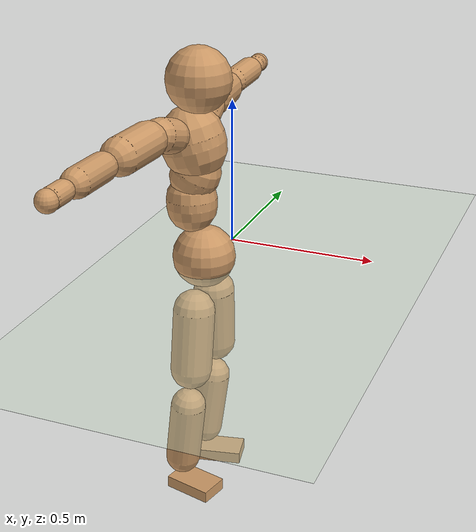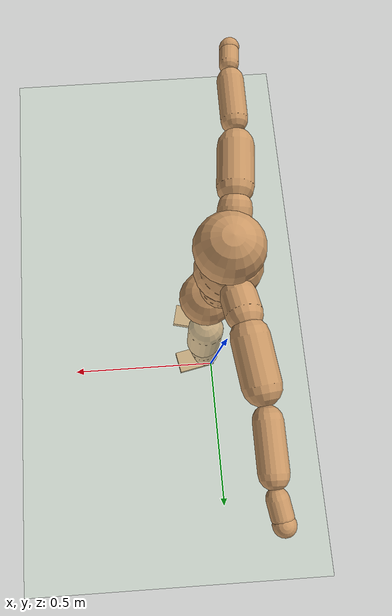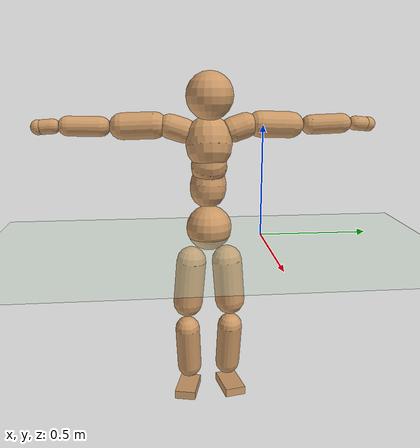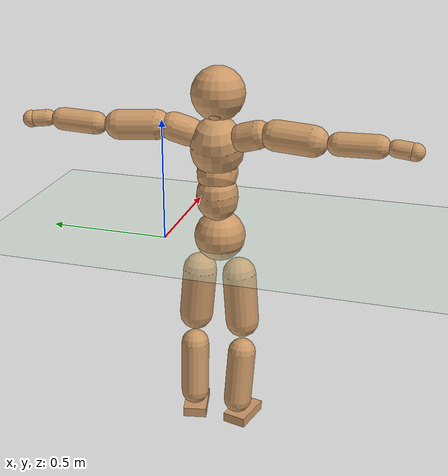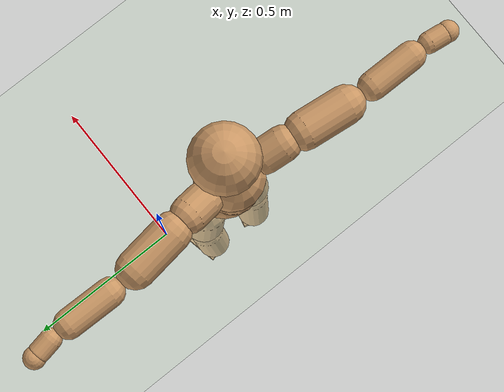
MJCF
<mujoco model="humanoid">
  <compiler coordinate="local"/>
  <default>
    <joint damping="0.0" armature="0.01" stiffness="0.0" limited="true"/>
    <geom conaffinity="1" condim="3" contype="7" margin="0.001" rgba="0.8 0.6 .4 1"/>
  </default>
  <asset>
    <texture type="skybox" builtin="gradient" rgb1=".4 .5 .6" rgb2="0 0 0" width="100" height="100"/>
    <texture builtin="flat" height="1278" mark="cross" markrgb="1 1 1" name="texgeom" random="0.01" rgb1="0.8 0.6 0.4" rgb2="0.8 0.6 0.4" type="cube" width="127"/>
    <texture builtin="checker" height="100" name="texplane" rgb1="0 0 0" rgb2="0.8 0.8 0.8" type="2d" width="100"/>
    <material name="MatPlane" reflectance="0.5" shininess="1" specular="1" texrepeat="60 60" texture="texplane"/>
    <material name="geom" texture="texgeom" texuniform="true"/>
  </asset>
  <worldbody>
    <light cutoff="100" diffuse="1 1 1" dir="-0 0 -1.3" directional="true" exponent="1" pos="0 0 1.3" specular=".1 .1 .1"/>
    <geom conaffinity="1" condim="3" name="floor" pos="0 0 0" rgba="0.8 0.9 0.8 1" size="100 100 .2" type="plane" material="MatPlane"/>
    <body name="Pelvis" pos="-0.0024 -0.2402 0.0406">
      <freejoint name="Pelvis"/>
      <geom type="sphere" contype="1" conaffinity="1" density="500" size="0.1040" pos="0.0000 0.0000 0.0000" name="Pelvis"/>
      <body name="L_Hip" pos="-0.0014 0.0788 -0.0925">
        <joint name="L_Hip_x" type="hinge" pos="0 0 0" axis="1 0 0" stiffness="800" damping="80" armature="0.02" range="-180.0000 180.0000"/>
        <joint name="L_Hip_y" type="hinge" pos="0 0 0" axis="0 1 0" stiffness="800" damping="80" armature="0.02" range="-180.0000 180.0000"/>
        <joint name="L_Hip_z" type="hinge" pos="0 0 0" axis="0 0 1" stiffness="800" damping="80" armature="0.02" range="-180.0000 180.0000"/>
        <geom type="capsule" contype="1" conaffinity="1" density="500" fromto="-0.0015 0.0054 -0.0687 -0.0061 0.0217 -0.2747" size="0.07" name="L_Hip"/>
        <body name="L_Knee" pos="-0.0077 0.0271 -0.3434">
          <joint name="L_Knee_x" type="hinge" pos="0 0 0" axis="1 0 0" stiffness="800" damping="80" armature="0.02" range="-180.0000 180.0000"/>
          <joint name="L_Knee_y" type="hinge" pos="0 0 0" axis="0 1 0" stiffness="800" damping="80" armature="0.02" range="-180.0000 180.0000"/>
          <joint name="L_Knee_z" type="hinge" pos="0 0 0" axis="0 0 1" stiffness="800" damping="80" armature="0.02" range="-180.0000 180.0000"/>
          <geom type="capsule" contype="1" conaffinity="1" density="500" fromto="-0.0097 -0.0025 -0.0729 -0.0387 -0.0102 -0.2915" size="0.0594" name="L_Knee"/>
          <body name="L_Ankle" pos="-0.0484 -0.0127 -0.3643">
            <joint name="L_Ankle_x" type="hinge" pos="0 0 0" axis="1 0 0" stiffness="800" damping="80" armature="0.02" range="-180.0000 180.0000"/>
            <joint name="L_Ankle_y" type="hinge" pos="0 0 0" axis="0 1 0" stiffness="800" damping="80" armature="0.02" range="-180.0000 180.0000"/>
            <joint name="L_Ankle_z" type="hinge" pos="0 0 0" axis="0 0 1" stiffness="800" damping="80" armature="0.02" range="-180.0000 180.0000"/>
            <geom type="box" contype="1" conaffinity="1" density="500" pos="0.0583 0.0120 -0.0261" size="0.085 0.0498 0.0204" quat="0.9949 0.0000 0.0000 0.1012" name="L_Ankle"/>
            <body name="L_Toe" pos="0.1166 0.024 -0.0523">
              <joint name="L_Toe_x" type="hinge" pos="0 0 0" axis="1 0 0" stiffness="500" damping="50" armature="0.02" range="-180.0000 180.0000"/>
              <joint name="L_Toe_y" type="hinge" pos="0 0 0" axis="0 1 0" stiffness="500" damping="50" armature="0.02" range="-180.0000 180.0000"/>
              <joint name="L_Toe_z" type="hinge" pos="0 0 0" axis="0 0 1" stiffness="500" damping="50" armature="0.02" range="-180.0000 180.0000"/>
              <geom type="box" contype="1" conaffinity="1" density="500" pos="0.0000 0.0000 0.0264" size="0.001 0.0025 0.001" quat="0.9942 0.0000 0.0000 0.1076" name="L_Toe"/>
            </body>
          </body>
        </body>
      </body>
      <body name="R_Hip" pos="0.0007 -0.0775 -0.0913">
        <joint name="R_Hip_x" type="hinge" pos="0 0 0" axis="1 0 0" stiffness="800" damping="80" armature="0.02" range="-180.0000 180.0000"/>
        <joint name="R_Hip_y" type="hinge" pos="0 0 0" axis="0 1 0" stiffness="800" damping="80" armature="0.02" range="-180.0000 180.0000"/>
        <joint name="R_Hip_z" type="hinge" pos="0 0 0" axis="0 0 1" stiffness="800" damping="80" armature="0.02" range="-180.0000 180.0000"/>
        <geom type="capsule" contype="1" conaffinity="1" density="500" fromto="-0.0022 -0.0061 -0.0706 -0.0090 -0.0245 -0.2825" size="0.0692" name="R_Hip"/>
        <body name="R_Knee" pos="-0.0112 -0.0307 -0.3531">
          <joint name="R_Knee_x" type="hinge" pos="0 0 0" axis="1 0 0" stiffness="800" damping="80" armature="0.02" range="-180.0000 180.0000"/>
          <joint name="R_Knee_y" type="hinge" pos="0 0 0" axis="0 1 0" stiffness="800" damping="80" armature="0.02" range="-180.0000 180.0000"/>
          <joint name="R_Knee_z" type="hinge" pos="0 0 0" axis="0 0 1" stiffness="800" damping="80" armature="0.02" range="-180.0000 180.0000"/>
          <geom type="capsule" contype="1" conaffinity="1" density="500" fromto="-0.0096 0.0028 -0.0731 -0.0384 0.0113 -0.2923" size="0.059" name="R_Knee"/>
          <body name="R_Ankle" pos="-0.048 0.0141 -0.3654">
            <joint name="R_Ankle_x" type="hinge" pos="0 0 0" axis="1 0 0" stiffness="800" damping="80" armature="0.02" range="-180.0000 180.0000"/>
            <joint name="R_Ankle_y" type="hinge" pos="0 0 0" axis="0 1 0" stiffness="800" damping="80" armature="0.02" range="-180.0000 180.0000"/>
            <joint name="R_Ankle_z" type="hinge" pos="0 0 0" axis="0 0 1" stiffness="800" damping="80" armature="0.02" range="-180.0000 180.0000"/>
            <geom type="box" contype="1" conaffinity="1" density="500" pos="0.0599 -0.0145 -0.0226" size="0.0831 0.0499 0.0204" quat="0.9930 0.0000 0.0000 -0.1183" name="R_Ankle"/>
            <body name="R_Toe" pos="0.1198 -0.029 -0.0451">
              <joint name="R_Toe_x" type="hinge" pos="0 0 0" axis="1 0 0" stiffness="500" damping="50" armature="0.02" range="-180.0000 180.0000"/>
              <joint name="R_Toe_y" type="hinge" pos="0 0 0" axis="0 1 0" stiffness="500" damping="50" armature="0.02" range="-180.0000 180.0000"/>
              <joint name="R_Toe_z" type="hinge" pos="0 0 0" axis="0 0 1" stiffness="500" damping="50" armature="0.02" range="-180.0000 180.0000"/>
              <geom type="box" contype="1" conaffinity="1" density="500" pos="0.0000 0.0000 0.0230" size="0.001 0.0025 0.001" quat="0.9941 0.0000 0.0000 -0.1087" name="R_Toe"/>
            </body>
          </body>
        </body>
      </body>
      <body name="Torso" pos="-0.0375 -0.0024 0.1126">
        <joint name="Torso_x" type="hinge" pos="0 0 0" axis="1 0 0" stiffness="1000" damping="100" armature="0.02" range="-180.0000 180.0000"/>
        <joint name="Torso_y" type="hinge" pos="0 0 0" axis="0 1 0" stiffness="1000" damping="100" armature="0.02" range="-180.0000 180.0000"/>
        <joint name="Torso_z" type="hinge" pos="0 0 0" axis="0 0 1" stiffness="1000" damping="100" armature="0.02" range="-180.0000 180.0000"/>
        <geom type="capsule" contype="1" conaffinity="1" density="500" fromto="-0.0033 0.0031 0.0833 -0.0022 0.0020 0.0555" size="0.083" name="Torso"/>
        <body name="Spine" pos="-0.0055 0.0051 0.1389">
          <joint name="Spine_x" type="hinge" pos="0 0 0" axis="1 0 0" stiffness="1000" damping="100" armature="0.02" range="-180.0000 180.0000"/>
          <joint name="Spine_y" type="hinge" pos="0 0 0" axis="0 1 0" stiffness="1000" damping="100" armature="0.02" range="-180.0000 180.0000"/>
          <joint name="Spine_z" type="hinge" pos="0 0 0" axis="0 0 1" stiffness="1000" damping="100" armature="0.02" range="-180.0000 180.0000"/>
          <geom type="capsule" contype="1" conaffinity="1" density="500" fromto="0.0183 0.0011 0.0329 0.0122 0.0007 0.0219" size="0.0813" name="Spine"/>
          <body name="Chest" pos="0.0305 0.0018 0.0549">
            <joint name="Chest_x" type="hinge" pos="0 0 0" axis="1 0 0" stiffness="1000" damping="100" armature="0.02" range="-180.0000 180.0000"/>
            <joint name="Chest_y" type="hinge" pos="0 0 0" axis="0 1 0" stiffness="1000" damping="100" armature="0.02" range="-180.0000 180.0000"/>
            <joint name="Chest_z" type="hinge" pos="0 0 0" axis="0 0 1" stiffness="1000" damping="100" armature="0.02" range="-180.0000 180.0000"/>
            <geom type="capsule" contype="1" conaffinity="1" density="500" fromto="-0.0243 -0.0010 0.0927 -0.0162 -0.0007 0.0618" size="0.1048" name="Chest"/>
            <body name="Neck" pos="-0.0497 -0.0026 0.2177">
              <joint name="Neck_x" type="hinge" pos="0 0 0" axis="1 0 0" stiffness="500" damping="50" armature="0.02" range="-180.0000 180.0000"/>
              <joint name="Neck_y" type="hinge" pos="0 0 0" axis="0 1 0" stiffness="500" damping="50" armature="0.02" range="-180.0000 180.0000"/>
              <joint name="Neck_z" type="hinge" pos="0 0 0" axis="0 0 1" stiffness="500" damping="50" armature="0.02" range="-180.0000 180.0000"/>
              <geom type="capsule" contype="1" conaffinity="1" density="500" fromto="0.0100 0.0009 0.0123 0.0398 0.0035 0.0491" size="0.0454" name="Neck"/>
              <body name="Head" pos="0.0498 0.0044 0.0614">
                <joint name="Head_x" type="hinge" pos="0 0 0" axis="1 0 0" stiffness="500" damping="50" armature="0.02" range="-180.0000 180.0000"/>
                <joint name="Head_y" type="hinge" pos="0 0 0" axis="0 1 0" stiffness="500" damping="50" armature="0.02" range="-180.0000 180.0000"/>
                <joint name="Head_z" type="hinge" pos="0 0 0" axis="0 0 1" stiffness="500" damping="50" armature="0.02" range="-180.0000 180.0000"/>
                <geom type="sphere" contype="1" conaffinity="1" density="500" size="0.1054" pos="0.0000 0.0000 0.0000" name="Head"/>
              </body>
            </body>
            <body name="L_Thorax" pos="-0.0324 0.0859 0.1246">
              <joint name="L_Thorax_x" type="hinge" pos="0 0 0" axis="1 0 0" stiffness="500" damping="50" armature="0.02" range="-180.0000 180.0000"/>
              <joint name="L_Thorax_y" type="hinge" pos="0 0 0" axis="0 1 0" stiffness="500" damping="50" armature="0.02" range="-180.0000 180.0000"/>
              <joint name="L_Thorax_z" type="hinge" pos="0 0 0" axis="0 0 1" stiffness="500" damping="50" armature="0.02" range="-180.0000 180.0000"/>
              <geom type="capsule" contype="1" conaffinity="1" density="500" fromto="-0.0026 0.0200 0.0062 -0.0103 0.0798 0.0248" size="0.0568" name="L_Thorax"/>
              <body name="L_Shoulder" pos="-0.0129 0.0998 0.031">
                <joint name="L_Shoulder_x" type="hinge" pos="0 0 0" axis="1 0 0" stiffness="500" damping="50" armature="0.02" range="-720.0000 720.0000"/>
                <joint name="L_Shoulder_y" type="hinge" pos="0 0 0" axis="0 1 0" stiffness="500" damping="50" armature="0.02" range="-720.0000 720.0000"/>
                <joint name="L_Shoulder_z" type="hinge" pos="0 0 0" axis="0 0 1" stiffness="500" damping="50" armature="0.02" range="-720.0000 720.0000"/>
                <geom type="capsule" contype="1" conaffinity="1" density="500" fromto="-0.0063 0.0482 -0.0021 -0.0252 0.1927 -0.0083" size="0.0593" name="L_Shoulder"/>
                <body name="L_Elbow" pos="-0.0315 0.2409 -0.0104">
                  <joint name="L_Elbow_x" type="hinge" pos="0 0 0" axis="1 0 0" stiffness="500" damping="50" armature="0.02" range="-720.0000 720.0000"/>
                  <joint name="L_Elbow_y" type="hinge" pos="0 0 0" axis="0 1 0" stiffness="500" damping="50" armature="0.02" range="-720.0000 720.0000"/>
                  <joint name="L_Elbow_z" type="hinge" pos="0 0 0" axis="0 0 1" stiffness="500" damping="50" armature="0.02" range="-720.0000 720.0000"/>
                  <geom type="capsule" contype="1" conaffinity="1" density="500" fromto="0.0005 0.0477 0.0018 0.0022 0.1907 0.0072" size="0.0448" name="L_Elbow"/>
                  <body name="L_Wrist" pos="0.0027 0.2383 0.009">
                    <joint name="L_Wrist_x" type="hinge" pos="0 0 0" axis="1 0 0" stiffness="300" damping="30" armature="0.02" range="-180.0000 180.0000"/>
                    <joint name="L_Wrist_y" type="hinge" pos="0 0 0" axis="0 1 0" stiffness="300" damping="30" armature="0.02" range="-180.0000 180.0000"/>
                    <joint name="L_Wrist_z" type="hinge" pos="0 0 0" axis="0 0 1" stiffness="300" damping="30" armature="0.02" range="-180.0000 180.0000"/>
                    <geom type="capsule" contype="1" conaffinity="1" density="500" fromto="-0.0029 0.0168 -0.0016 -0.0117 0.0673 -0.0065" size="0.0325" name="L_Wrist"/>
                    <body name="L_Hand" pos="-0.0146 0.0842 -0.0081">
                      <joint name="L_Hand_x" type="hinge" pos="0 0 0" axis="1 0 0" stiffness="300" damping="30" armature="0.02" range="-180.0000 180.0000"/>
                      <joint name="L_Hand_y" type="hinge" pos="0 0 0" axis="0 1 0" stiffness="300" damping="30" armature="0.02" range="-180.0000 180.0000"/>
                      <joint name="L_Hand_z" type="hinge" pos="0 0 0" axis="0 0 1" stiffness="300" damping="30" armature="0.02" range="-180.0000 180.0000"/>
                      <geom type="sphere" contype="1" conaffinity="1" density="500" size="0.0339" pos="0.0000 0.0000 0.0000" name="L_Hand"/>
                    </body>
                  </body>
                </body>
              </body>
            </body>
            <body name="R_Thorax" pos="-0.0394 -0.0883 0.1212">
              <joint name="R_Thorax_x" type="hinge" pos="0 0 0" axis="1 0 0" stiffness="500" damping="50" armature="0.02" range="-180.0000 180.0000"/>
              <joint name="R_Thorax_y" type="hinge" pos="0 0 0" axis="0 1 0" stiffness="500" damping="50" armature="0.02" range="-180.0000 180.0000"/>
              <joint name="R_Thorax_z" type="hinge" pos="0 0 0" axis="0 0 1" stiffness="500" damping="50" armature="0.02" range="-180.0000 180.0000"/>
              <geom type="capsule" contype="1" conaffinity="1" density="500" fromto="-0.0028 -0.0208 0.0064 -0.0111 -0.0832 0.0256" size="0.0549" name="R_Thorax"/>
              <body name="R_Shoulder" pos="-0.0139 -0.1041 0.032">
                <joint name="R_Shoulder_x" type="hinge" pos="0 0 0" axis="1 0 0" stiffness="500" damping="50" armature="0.02" range="-720.0000 720.0000"/>
                <joint name="R_Shoulder_y" type="hinge" pos="0 0 0" axis="0 1 0" stiffness="500" damping="50" armature="0.02" range="-720.0000 720.0000"/>
                <joint name="R_Shoulder_z" type="hinge" pos="0 0 0" axis="0 0 1" stiffness="500" damping="50" armature="0.02" range="-720.0000 720.0000"/>
                <geom type="capsule" contype="1" conaffinity="1" density="500" fromto="-0.0054 -0.0475 -0.0017 -0.0215 -0.1899 -0.0067" size="0.0596" name="R_Shoulder"/>
                <body name="R_Elbow" pos="-0.0268 -0.2374 -0.0084">
                  <joint name="R_Elbow_x" type="hinge" pos="0 0 0" axis="1 0 0" stiffness="500" damping="50" armature="0.02" range="-720.0000 720.0000"/>
                  <joint name="R_Elbow_y" type="hinge" pos="0 0 0" axis="0 1 0" stiffness="500" damping="50" armature="0.02" range="-720.0000 720.0000"/>
                  <joint name="R_Elbow_z" type="hinge" pos="0 0 0" axis="0 0 1" stiffness="500" damping="50" armature="0.02" range="-720.0000 720.0000"/>
                  <geom type="capsule" contype="1" conaffinity="1" density="500" fromto="-0.0003 -0.0477 0.0010 -0.0012 -0.1908 0.0040" size="0.0443" name="R_Elbow"/>
                  <body name="R_Wrist" pos="-0.0015 -0.2385 0.0049">
                    <joint name="R_Wrist_x" type="hinge" pos="0 0 0" axis="1 0 0" stiffness="300" damping="30" armature="0.02" range="-180.0000 180.0000"/>
                    <joint name="R_Wrist_y" type="hinge" pos="0 0 0" axis="0 1 0" stiffness="300" damping="30" armature="0.02" range="-180.0000 180.0000"/>
                    <joint name="R_Wrist_z" type="hinge" pos="0 0 0" axis="0 0 1" stiffness="300" damping="30" armature="0.02" range="-180.0000 180.0000"/>
                    <geom type="capsule" contype="1" conaffinity="1" density="500" fromto="-0.0020 -0.0166 -0.0012 -0.0082 -0.0666 -0.0048" size="0.0328" name="R_Wrist"/>
                    <body name="R_Hand" pos="-0.0102 -0.0832 -0.006">
                      <joint name="R_Hand_x" type="hinge" pos="0 0 0" axis="1 0 0" stiffness="300" damping="30" armature="0.02" range="-180.0000 180.0000"/>
                      <joint name="R_Hand_y" type="hinge" pos="0 0 0" axis="0 1 0" stiffness="300" damping="30" armature="0.02" range="-180.0000 180.0000"/>
                      <joint name="R_Hand_z" type="hinge" pos="0 0 0" axis="0 0 1" stiffness="300" damping="30" armature="0.02" range="-180.0000 180.0000"/>
                      <geom type="sphere" contype="1" conaffinity="1" density="500" size="0.0336" pos="0.0000 0.0000 0.0000" name="R_Hand"/>
                    </body>
                  </body>
                </body>
              </body>
            </body>
          </body>
        </body>
      </body>
    </body>
  </worldbody>
  <actuator>
    <motor name="L_Hip_x" joint="L_Hip_x" gear="500"/>
    <motor name="L_Hip_y" joint="L_Hip_y" gear="500"/>
    <motor name="L_Hip_z" joint="L_Hip_z" gear="500"/>
    <motor name="L_Knee_x" joint="L_Knee_x" gear="500"/>
    <motor name="L_Knee_y" joint="L_Knee_y" gear="500"/>
    <motor name="L_Knee_z" joint="L_Knee_z" gear="500"/>
    <motor name="L_Ankle_x" joint="L_Ankle_x" gear="500"/>
    <motor name="L_Ankle_y" joint="L_Ankle_y" gear="500"/>
    <motor name="L_Ankle_z" joint="L_Ankle_z" gear="500"/>
    <motor name="L_Toe_x" joint="L_Toe_x" gear="500"/>
    <motor name="L_Toe_y" joint="L_Toe_y" gear="500"/>
    <motor name="L_Toe_z" joint="L_Toe_z" gear="500"/>
    <motor name="R_Hip_x" joint="R_Hip_x" gear="500"/>
    <motor name="R_Hip_y" joint="R_Hip_y" gear="500"/>
    <motor name="R_Hip_z" joint="R_Hip_z" gear="500"/>
    <motor name="R_Knee_x" joint="R_Knee_x" gear="500"/>
    <motor name="R_Knee_y" joint="R_Knee_y" gear="500"/>
    <motor name="R_Knee_z" joint="R_Knee_z" gear="500"/>
    <motor name="R_Ankle_x" joint="R_Ankle_x" gear="500"/>
    <motor name="R_Ankle_y" joint="R_Ankle_y" gear="500"/>
    <motor name="R_Ankle_z" joint="R_Ankle_z" gear="500"/>
    <motor name="R_Toe_x" joint="R_Toe_x" gear="500"/>
    <motor name="R_Toe_y" joint="R_Toe_y" gear="500"/>
    <motor name="R_Toe_z" joint="R_Toe_z" gear="500"/>
    <motor name="Torso_x" joint="Torso_x" gear="500"/>
    <motor name="Torso_y" joint="Torso_y" gear="500"/>
    <motor name="Torso_z" joint="Torso_z" gear="500"/>
    <motor name="Spine_x" joint="Spine_x" gear="500"/>
    <motor name="Spine_y" joint="Spine_y" gear="500"/>
    <motor name="Spine_z" joint="Spine_z" gear="500"/>
    <motor name="Chest_x" joint="Chest_x" gear="500"/>
    <motor name="Chest_y" joint="Chest_y" gear="500"/>
    <motor name="Chest_z" joint="Chest_z" gear="500"/>
    <motor name="Neck_x" joint="Neck_x" gear="500"/>
    <motor name="Neck_y" joint="Neck_y" gear="500"/>
    <motor name="Neck_z" joint="Neck_z" gear="500"/>
    <motor name="Head_x" joint="Head_x" gear="500"/>
    <motor name="Head_y" joint="Head_y" gear="500"/>
    <motor name="Head_z" joint="Head_z" gear="500"/>
    <motor name="L_Thorax_x" joint="L_Thorax_x" gear="500"/>
    <motor name="L_Thorax_y" joint="L_Thorax_y" gear="500"/>
    <motor name="L_Thorax_z" joint="L_Thorax_z" gear="500"/>
    <motor name="L_Shoulder_x" joint="L_Shoulder_x" gear="500"/>
    <motor name="L_Shoulder_y" joint="L_Shoulder_y" gear="500"/>
    <motor name="L_Shoulder_z" joint="L_Shoulder_z" gear="500"/>
    <motor name="L_Elbow_x" joint="L_Elbow_x" gear="500"/>
    <motor name="L_Elbow_y" joint="L_Elbow_y" gear="500"/>
    <motor name="L_Elbow_z" joint="L_Elbow_z" gear="500"/>
    <motor name="L_Wrist_x" joint="L_Wrist_x" gear="500"/>
    <motor name="L_Wrist_y" joint="L_Wrist_y" gear="500"/>
    <motor name="L_Wrist_z" joint="L_Wrist_z" gear="500"/>
    <motor name="L_Hand_x" joint="L_Hand_x" gear="500"/>
    <motor name="L_Hand_y" joint="L_Hand_y" gear="500"/>
    <motor name="L_Hand_z" joint="L_Hand_z" gear="500"/>
    <motor name="R_Thorax_x" joint="R_Thorax_x" gear="500"/>
    <motor name="R_Thorax_y" joint="R_Thorax_y" gear="500"/>
    <motor name="R_Thorax_z" joint="R_Thorax_z" gear="500"/>
    <motor name="R_Shoulder_x" joint="R_Shoulder_x" gear="500"/>
    <motor name="R_Shoulder_y" joint="R_Shoulder_y" gear="500"/>
    <motor name="R_Shoulder_z" joint="R_Shoulder_z" gear="500"/>
    <motor name="R_Elbow_x" joint="R_Elbow_x" gear="500"/>
    <motor name="R_Elbow_y" joint="R_Elbow_y" gear="500"/>
    <motor name="R_Elbow_z" joint="R_Elbow_z" gear="500"/>
    <motor name="R_Wrist_x" joint="R_Wrist_x" gear="500"/>
    <motor name="R_Wrist_y" joint="R_Wrist_y" gear="500"/>
    <motor name="R_Wrist_z" joint="R_Wrist_z" gear="500"/>
    <motor name="R_Hand_x" joint="R_Hand_x" gear="500"/>
    <motor name="R_Hand_y" joint="R_Hand_y" gear="500"/>
    <motor name="R_Hand_z" joint="R_Hand_z" gear="500"/>
  </actuator>
  <contact>
    <exclude body1="Torso" body2="Chest"/>
    <exclude body1="Head" body2="Chest"/>
    <exclude body1="R_Knee" body2="R_Toe"/>
    <exclude body1="R_Knee" body2="L_Ankle"/>
    <exclude body1="R_Knee" body2="L_Toe"/>
    <exclude body1="L_Knee" body2="L_Toe"/>
    <exclude body1="L_Knee" body2="R_Ankle"/>
    <exclude body1="L_Knee" body2="R_Toe"/>
    <exclude body1="L_Shoulder" body2="Chest"/>
    <exclude body1="R_Shoulder" body2="Chest"/>
  </contact>
  <sensor/>
  <size njmax="700" nconmax="700"/>
</mujoco>
